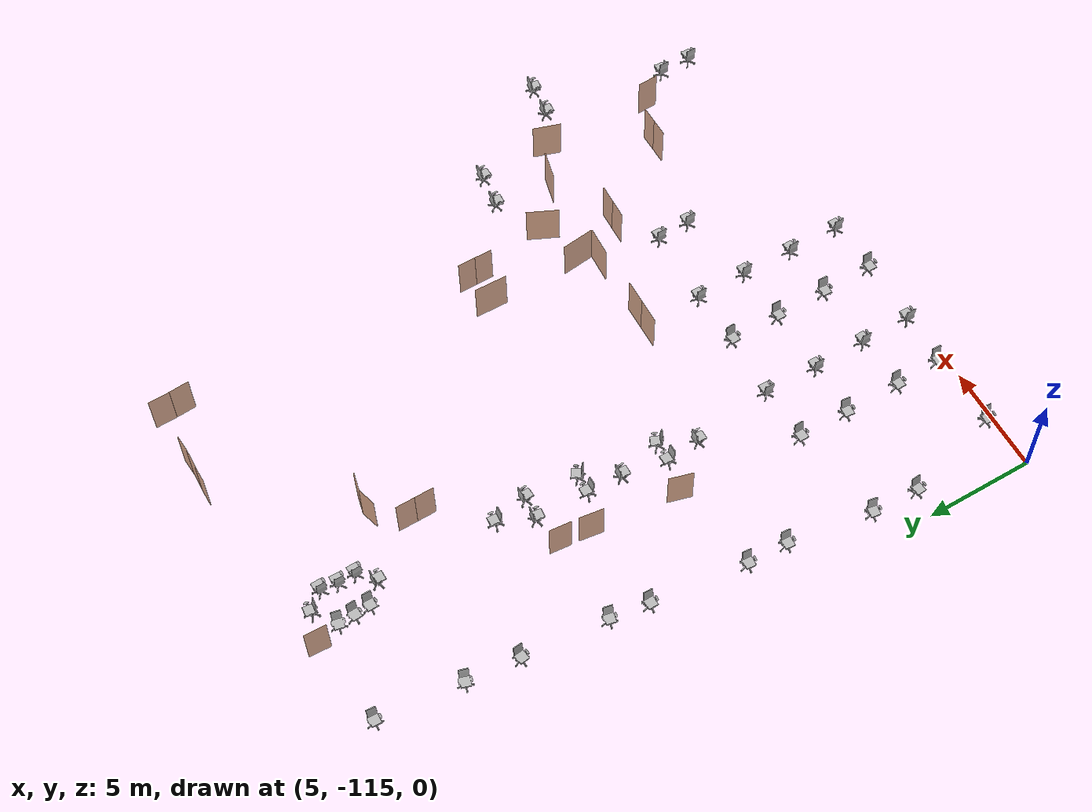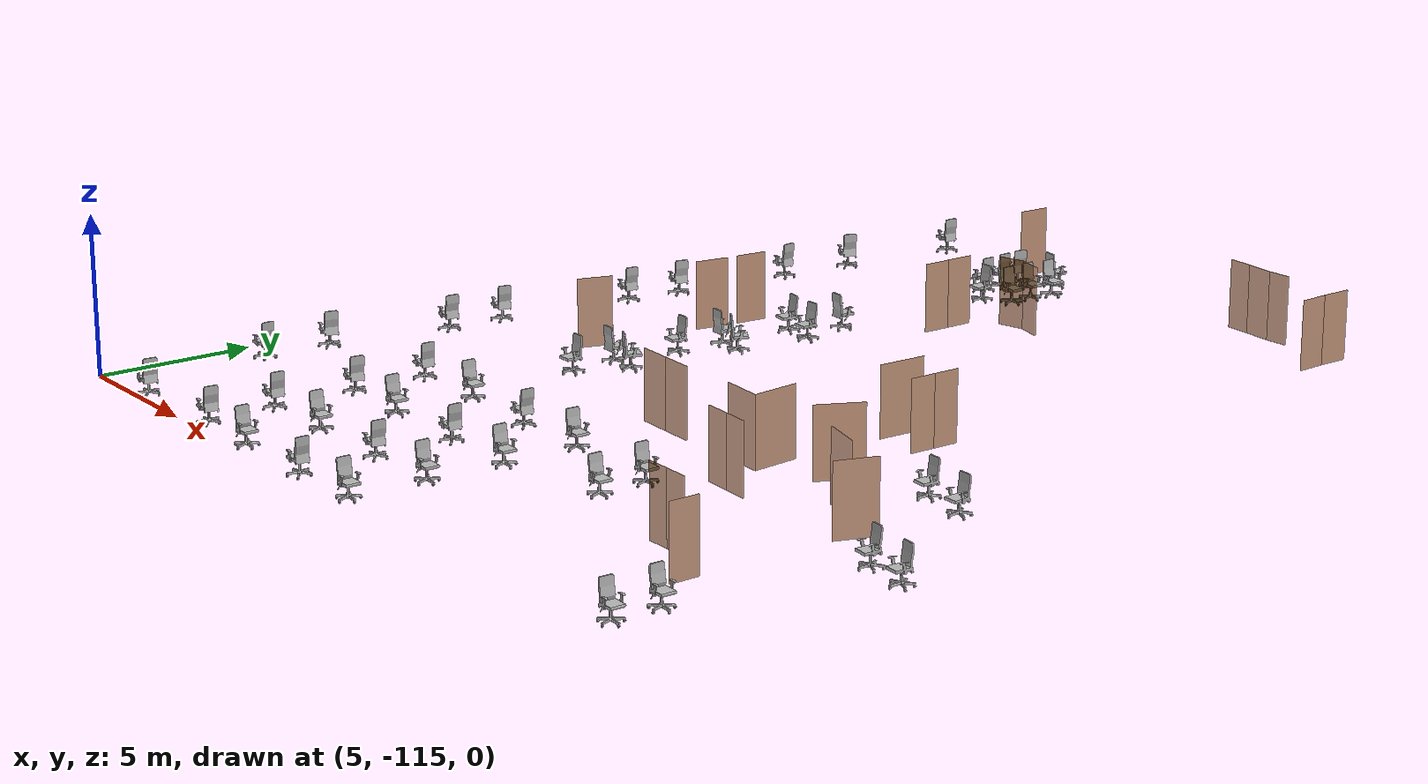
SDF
<sdf version="1.7">
 <world name="world">
  <include><uri>model://sun</uri></include>
  <include>
   <name>OpenRobotics/OfficeChairBlue</name>
   <uri>model://OfficeChairBlue</uri>
   <pose>28.21482018315684 -102.00691728255538 0.0 0 0 -0.0498</pose>
   <static>True</static>
  </include>
  <include>
   <name>OpenRobotics/OfficeChairBlue_2</name>
   <uri>model://OfficeChairBlue</uri>
   <pose>29.76414738809558 -102.22124087923856 0.0 0 0 0.0036</pose>
   <static>True</static>
  </include>
  <include>
   <name>OpenRobotics/OfficeChairBlue_3</name>
   <uri>model://OfficeChairBlue</uri>
   <pose>31.478287081211857 -106.56777730961561 0.0 0 0 -0.0988</pose>
   <static>True</static>
  </include>
  <include>
   <name>OpenRobotics/OfficeChairBlue_4</name>
   <uri>model://OfficeChairBlue</uri>
   <pose>32.94004361804536 -106.73483519953945 0.0 0 0 -0.0909</pose>
   <static>True</static>
  </include>
  <include>
   <name>OpenRobotics/OfficeChairBlue_5</name>
   <uri>model://OfficeChairBlue</uri>
   <pose>22.90410824292371 -107.34760533610144 0.0 0 0 1.5708</pose>
   <static>True</static>
  </include>
  <include>
   <name>OpenRobotics/OfficeChairBlue_6</name>
   <uri>model://OfficeChairBlue</uri>
   <pose>22.97248072609818 -108.90804727968431 0.0 0 0 1.5708</pose>
   <static>True</static>
  </include>
  <include>
   <name>OpenRobotics/OfficeChairBlue_7</name>
   <uri>model://OfficeChairBlue</uri>
   <pose>30.84272611692503 -112.35720890215734 0.0 0 0 1.5708</pose>
   <static>True</static>
  </include>
  <include>
   <name>OpenRobotics/OfficeChairBlue_8</name>
   <uri>model://OfficeChairBlue</uri>
   <pose>22.97248072609818 -108.90804727968431 0.0 0 0 1.5708</pose>
   <static>True</static>
  </include>
  <include>
   <name>OpenRobotics/OfficeChairBlue_9</name>
   <uri>model://OfficeChairBlue</uri>
   <pose>19.261168449746016 -114.53827988841422 0.0 0 0 1.5708</pose>
   <static>True</static>
  </include>
  <include>
   <name>OpenRobotics/OfficeChairBlue_10</name>
   <uri>model://OfficeChairBlue</uri>
   <pose>22.97248072609818 -108.90804727968431 0.0 0 0 1.5708</pose>
   <static>True</static>
  </include>
  <include>
   <name>OpenRobotics/OfficeChairBlue_11</name>
   <uri>model://OfficeChairBlue</uri>
   <pose>16.427359175843208 -112.17140190765201 0.0 0 0 -1.6285</pose>
   <static>True</static>
  </include>
  <include>
   <name>OpenRobotics/OfficeChairBlue_12</name>
   <uri>model://OfficeChairBlue</uri>
   <pose>19.282836576597692 -112.09550732862748 0.0 0 0 1.5708</pose>
   <static>True</static>
  </include>
  <include>
   <name>OpenRobotics/OfficeChairBlue_13</name>
   <uri>model://OfficeChairBlue</uri>
   <pose>19.347953227240048 -109.65262249875342 0.0 0 0 1.5708</pose>
   <static>True</static>
  </include>
  <include>
   <name>OpenRobotics/OfficeChairBlue_14</name>
   <uri>model://OfficeChairBlue</uri>
   <pose>16.427359175843208 -109.70684895092627 0.0 0 0 -1.5575</pose>
   <static>True</static>
  </include>
  <include>
   <name>OpenRobotics/OfficeChairBlue_15</name>
   <uri>model://OfficeChairBlue</uri>
   <pose>19.31539490191887 -107.22062786734885 0.0 0 0 1.5708</pose>
   <static>True</static>
  </include>
  <include>
   <name>OpenRobotics/OfficeChairBlue_16</name>
   <uri>model://OfficeChairBlue</uri>
   <pose>16.449139572782205 -107.31830284331238 0.0 0 0 -1.5289</pose>
   <static>True</static>
  </include>
  <include>
   <name>OpenRobotics/OfficeChairBlue_17</name>
   <uri>model://OfficeChairBlue</uri>
   <pose>13.702227346460743 -107.16628914508868 0.0 0 0 1.5708</pose>
   <static>True</static>
  </include>
  <include>
   <name>OpenRobotics/OfficeChairBlue_18</name>
   <uri>model://OfficeChairBlue</uri>
   <pose>13.626220497348895 -109.71773914939577 0.0 0 0 1.5708</pose>
   <static>True</static>
  </include>
  <include>
   <name>OpenRobotics/OfficeChairBlue_19</name>
   <uri>model://OfficeChairBlue</uri>
   <pose>10.846749945706259 -107.23140579573104 0.0 0 0 -1.5505</pose>
   <static>True</static>
  </include>
  <include>
   <name>OpenRobotics/OfficeChairBlue_20</name>
   <uri>model://OfficeChairBlue</uri>
   <pose>10.814191620385083 -109.59828377649325 0.0 0 0 -1.6687</pose>
   <static>True</static>
  </include>
  <include>
   <name>OpenRobotics/OfficeChairBlue_21</name>
   <uri>model://OfficeChairBlue</uri>
   <pose>10.814191620385083 -112.29085728055453 0.0 0 0 -1.5637</pose>
   <static>True</static>
  </include>
  <include>
   <name>OpenRobotics/OfficeChairBlue_22</name>
   <uri>model://OfficeChairBlue</uri>
   <pose>10.911978866435927 -114.48405343624137 0.0 0 0 -1.6045</pose>
   <static>True</static>
  </include>
  <include>
   <name>OpenRobotics/OfficeChairBlue_23</name>
   <uri>model://OfficeChairBlue</uri>
   <pose>7.423185903140904 -114.65010089537937 0.0 0 0 -1.6313</pose>
   <static>True</static>
  </include>
  <include>
   <name>OpenRobotics/OfficeChairBlue_24</name>
   <uri>model://OfficeChairBlue</uri>
   <pose>13.65877882267007 -112.23663082838168 0.0 0 0 1.5708</pose>
   <static>True</static>
  </include>
  <include>
   <name>OpenRobotics/OfficeChairBlue_25</name>
   <uri>model://OfficeChairBlue</uri>
   <pose>13.65877882267007 -114.61428673752607 0.0 0 0 1.5708</pose>
   <static>True</static>
  </include>
  <include>
   <name>OpenRobotics/OfficeChairBlue_26</name>
   <uri>model://OfficeChairBlue</uri>
   <pose>13.310517011820798 -99.75084987797247 0.0 0 0 -0.0237</pose>
   <static>True</static>
  </include>
  <include>
   <name>OpenRobotics/OfficeChairBlue_27</name>
   <uri>model://OfficeChairBlue</uri>
   <pose>14.166351887418479 -93.77336588917912 0.0 0 0 3.0887</pose>
   <static>True</static>
  </include>
  <include>
   <name>OpenRobotics/OfficeChairBlue_28</name>
   <uri>model://OfficeChairBlue</uri>
   <pose>13.083170085009135 -103.45497686873651 0.0 0 0 -0.0022</pose>
   <static>True</static>
  </include>
  <include>
   <name>OpenRobotics/OfficeChairBlue_29</name>
   <uri>model://OfficeChairBlue</uri>
   <pose>6.143419177844043 -110.09979425652668 0.0 0 0 -1.4799</pose>
   <static>True</static>
  </include>
  <include>
   <name>OpenRobotics/OfficeChairBlue_30</name>
   <uri>model://OfficeChairBlue</uri>
   <pose>6.233010707520935 -107.85214710849236 0.0 0 0 -1.7433</pose>
   <static>True</static>
  </include>
  <include>
   <name>OpenRobotics/OfficeChairBlue_31</name>
   <uri>model://OfficeChairBlue</uri>
   <pose>6.868683941895076 -103.92460264397266 0.0 0 0 -1.641</pose>
   <static>True</static>
  </include>
  <include>
   <name>OpenRobotics/OfficeChairBlue_32</name>
   <uri>model://OfficeChairBlue</uri>
   <pose>6.937954585768061 -102.01690932032635 0.0 0 0 -1.6725</pose>
   <static>True</static>
  </include>
  <include>
   <name>OpenRobotics/OfficeChairBlue_33</name>
   <uri>model://OfficeChairBlue</uri>
   <pose>7.4930178974504615 -97.54260953058552 0.0 0 0 -1.5981</pose>
   <static>True</static>
  </include>
  <include>
   <name>OpenRobotics/OfficeChairBlue_34</name>
   <uri>model://OfficeChairBlue</uri>
   <pose>7.753147689757931 -95.7042991208995 0.0 0 0 -1.7676</pose>
   <static>True</static>
  </include>
  <include>
   <name>OpenRobotics/OfficeChairBlue_35</name>
   <uri>model://OfficeChairBlue</uri>
   <pose>8.140254950817987 -91.74666627297954 0.0 0 0 -1.4522</pose>
   <static>True</static>
  </include>
  <include>
   <name>OpenRobotics/OfficeChairBlue_36</name>
   <uri>model://OfficeChairBlue</uri>
   <pose>8.384105580464865 -89.21654758526219 0.0 0 0 -1.8611</pose>
   <static>True</static>
  </include>
  <include>
   <name>OpenRobotics/OfficeChairBlue_37</name>
   <uri>model://OfficeChairBlue</uri>
   <pose>8.810844182346905 -85.28406323690066 0.0 0 0 -1.6239</pose>
   <static>True</static>
  </include>
  <include>
   <name>OpenRobotics/OfficeChairBlue_62</name>
   <uri>model://OfficeChairBlue</uri>
   <pose>15.320151574748582 -86.06119678129093 0.0 0 0 1.6053</pose>
   <static>True</static>
  </include>
  <include>
   <name>OpenRobotics/OfficeChairBlue_63</name>
   <uri>model://OfficeChairBlue</uri>
   <pose>15.222476598785052 -87.67833511896757 0.0 0 0 1.5708</pose>
   <static>True</static>
  </include>
  <include>
   <name>OpenRobotics/OfficeChairBlue_64</name>
   <uri>model://OfficeChairBlue</uri>
   <pose>13.279755007896652 -85.9635218053274 0.0 0 0 -1.7895</pose>
   <static>True</static>
  </include>
  <include>
   <name>OpenRobotics/OfficeChairBlue_65</name>
   <uri>model://OfficeChairBlue</uri>
   <pose>13.366539785390684 -87.50476556397952 0.0 0 0 -1.5708</pose>
   <static>True</static>
  </include>
  <include>
   <name>OpenRobotics/OfficeChairBlue_226</name>
   <uri>model://OfficeChairBlue</uri>
   <pose>30.85631079749007 -113.86409801409124 0.0 0 0 1.5708</pose>
   <static>True</static>
  </include>
  <include>
   <name>OpenRobotics/OfficeChairBlue_227</name>
   <uri>model://OfficeChairBlue</uri>
   <pose>12.922736130236855 -101.5962333031593 0.0 0 0 -3.1416</pose>
   <static>True</static>
  </include>
  <include>
   <name>OpenRobotics/OfficeChairBlue_228</name>
   <uri>model://OfficeChairBlue</uri>
   <pose>13.898924539435576 -101.62295358394012 0.0 0 0 2.715</pose>
   <static>True</static>
  </include>
  <include>
   <name>OpenRobotics/OfficeChairBlue_229</name>
   <uri>model://OfficeChairBlue</uri>
   <pose>13.37742998386018 -97.83855348074627 0.0 0 0 3.1166</pose>
   <static>True</static>
  </include>
  <include>
   <name>OpenRobotics/OfficeChairBlue_230</name>
   <uri>model://OfficeChairBlue</uri>
   <pose>14.300065561409932 -97.90546645278566 0.0 0 0 2.6135</pose>
   <static>True</static>
  </include>
  <include>
   <name>OpenRobotics/OfficeChairBlue_231</name>
   <uri>model://OfficeChairBlue</uri>
   <pose>13.417510405031422 -95.57866889319469 0.0 0 0 -0.1049</pose>
   <static>True</static>
  </include>
  <include>
   <name>OpenRobotics/OfficeChairBlue_232</name>
   <uri>model://OfficeChairBlue</uri>
   <pose>14.500692207440766 -95.64546959514676 0.0 0 0 0.0435</pose>
   <static>True</static>
  </include>
  <include>
   <name>OpenRobotics/OfficeChairBlue_233</name>
   <uri>model://OfficeChairBlue</uri>
   <pose>14.484525314867492 -85.1712317991497 0.0 0 0 3.0129</pose>
   <static>True</static>
  </include>
  <include>
   <name>OpenRobotics/OfficeChairBlue_234</name>
   <uri>model://OfficeChairBlue</uri>
   <pose>14.321621418174296 -88.42728887144195 0.0 0 0 0.0</pose>
   <static>True</static>
  </include>
  <include>
   <name>OpenRobotics/OfficeChairBlue_235</name>
   <uri>model://OfficeChairBlue</uri>
   <pose>13.301423134748331 -86.75581181150514 0.0 0 0 -1.5153</pose>
   <static>True</static>
  </include>
  <include>
   <name>OpenRobotics/OfficeChairBlue_236</name>
   <uri>model://OfficeChairBlue</uri>
   <pose>15.200808471933374 -86.85348678746867 0.0 0 0 1.5708</pose>
   <static>True</static>
  </include>
  <include>
   <name>OpenRobotics/OfficeChairBlue_237</name>
   <uri>model://OfficeChairBlue</uri>
   <pose>16.48169789810338 -114.62517693599557 0.0 0 0 -1.5452</pose>
   <static>True</static>
  </include>
  <model name="double_hinged">
   <pose>24.472184552443952 -105.86788558529763 0.0 0 0 3.099994751753793</pose>
   <link name="right">
    <pose>0.4184557978647652 0 1.11 0 0 0</pose>
    <visual name="right_visual">
     <geometry><box><size>0.8269115957295304 0.03 2.2</size></box></geometry>
     <material><ambient>0.5 0.25 0 0.6</ambient><diffuse>0.5 0.25 0 0.6</diffuse></material>
    </visual>
    <collision name="right_collision">
     <geometry><box><size>0.8269115957295304 0.03 2.2</size></box></geometry>
     <surface><contact><collide_bitmask>0x02</collide_bitmask></contact></surface>
    </collision>
    <inertial>
     <mass>50.0</mass>
     <inertia><ixx>20.17041666666667</ixx><iyy>23.015761613133165</iyy><izz>2.8528449464664933</izz></inertia>
    </inertial>
   </link>
   <joint name="right_joint" type="revolute">
    <parent>world</parent>
    <child>right</child>
    <axis><xyz>0 0 -1</xyz><limit><lower>0</lower><upper>1.57</upper></limit></axis>
    <pose>0.4184557978647652 0 0 0 0 0</pose>
   </joint>
   <link name="left">
    <pose>-0.4184557978647652 0 1.11 0 0 0</pose>
    <visual name="left_visual">
     <geometry><box><size>0.8269115957295304 0.03 2.2</size></box></geometry>
     <material><ambient>0.5 0.25 0 0.6</ambient><diffuse>0.5 0.25 0 0.6</diffuse></material>
    </visual>
    <collision name="left_collision">
     <geometry><box><size>0.8269115957295304 0.03 2.2</size></box></geometry>
     <surface><contact><collide_bitmask>0x02</collide_bitmask></contact></surface>
    </collision>
    <inertial>
     <mass>50.0</mass>
     <inertia><ixx>20.17041666666667</ixx><iyy>23.015761613133165</iyy><izz>2.8528449464664933</izz></inertia>
    </inertial>
   </link>
   <joint name="left_joint" type="revolute">
    <parent>world</parent>
    <child>left</child>
    <axis><xyz>0 0 -1</xyz><limit><lower>-1.57</lower><upper>0</upper></limit></axis>
    <pose>-0.4184557978647652 0 0 0 0 0</pose>
   </joint>
   <plugin name="door" filename="libdoor.so">
    <v_max_door>0.5</v_max_door>
    <a_max_door>0.3</a_max_door>
    <a_nom_door>0.15</a_nom_door>
    <dx_min_door>0.01</dx_min_door>
    <f_max_door>500.0</f_max_door>
    <door name="double_hinged" type="DoubleSwingDoor" left_joint_name="left_joint" right_joint_name="right_joint"/>
   </plugin>
  </model>
  <model name="door_0">
   <pose>22.94839879236924 -104.24552668856089 0.0 0 0 3.084555944791062</pose>
   <link name="right">
    <pose>0 0 1.11 0 0 0</pose>
    <visual name="right_visual">
     <geometry><box><size>1.3705849030750386 0.03 2.2</size></box></geometry>
     <material><ambient>0.5 0.25 0 0.6</ambient><diffuse>0.5 0.25 0 0.6</diffuse></material>
    </visual>
    <collision name="right_collision">
     <geometry><box><size>1.3705849030750386 0.03 2.2</size></box></geometry>
     <surface><contact><collide_bitmask>0x02</collide_bitmask></contact></surface>
    </collision>
    <inertial>
     <mass>50.0</mass>
     <inertia><ixx>20.17041666666667</ixx><iyy>27.993762402238392</iyy><izz>7.83084573557172</izz></inertia>
    </inertial>
   </link>
   <joint name="right_joint" type="revolute">
    <parent>world</parent>
    <child>right</child>
    <axis><xyz>0 0 -1</xyz><limit><lower>0</lower><upper>1.57</upper></limit></axis>
    <pose>0.6902924515375193 0 0 0 0 0</pose>
   </joint>
   <plugin name="door" filename="libdoor.so">
    <v_max_door>0.5</v_max_door>
    <a_max_door>0.3</a_max_door>
    <a_nom_door>0.15</a_nom_door>
    <dx_min_door>0.01</dx_min_door>
    <f_max_door>500.0</f_max_door>
    <door name="door_0" type="SwingDoor" left_joint_name="empty_joint" right_joint_name="right_joint"/>
   </plugin>
  </model>
  <model name="double_hinged_0">
   <pose>19.3055151342352 -104.2553503212009 0.0 0 0 3.114822426434996</pose>
   <link name="right">
    <pose>0.5515560219482146 0 1.11 0 0 0</pose>
    <visual name="right_visual">
     <geometry><box><size>1.0931120438964292 0.03 2.2</size></box></geometry>
     <material><ambient>0.5 0.25 0 0.6</ambient><diffuse>0.5 0.25 0 0.6</diffuse></material>
    </visual>
    <collision name="right_collision">
     <geometry><box><size>1.0931120438964292 0.03 2.2</size></box></geometry>
     <surface><contact><collide_bitmask>0x02</collide_bitmask></contact></surface>
    </collision>
    <inertial>
     <mass>50.0</mass>
     <inertia><ixx>20.17041666666667</ixx><iyy>25.145391418797626</iyy><izz>4.982474752130954</izz></inertia>
    </inertial>
   </link>
   <joint name="right_joint" type="revolute">
    <parent>world</parent>
    <child>right</child>
    <axis><xyz>0 0 -1</xyz><limit><lower>0</lower><upper>1.57</upper></limit></axis>
    <pose>0.5515560219482146 0 0 0 0 0</pose>
   </joint>
   <link name="left">
    <pose>-0.5515560219482146 0 1.11 0 0 0</pose>
    <visual name="left_visual">
     <geometry><box><size>1.0931120438964292 0.03 2.2</size></box></geometry>
     <material><ambient>0.5 0.25 0 0.6</ambient><diffuse>0.5 0.25 0 0.6</diffuse></material>
    </visual>
    <collision name="left_collision">
     <geometry><box><size>1.0931120438964292 0.03 2.2</size></box></geometry>
     <surface><contact><collide_bitmask>0x02</collide_bitmask></contact></surface>
    </collision>
    <inertial>
     <mass>50.0</mass>
     <inertia><ixx>20.17041666666667</ixx><iyy>25.145391418797626</iyy><izz>4.982474752130954</izz></inertia>
    </inertial>
   </link>
   <joint name="left_joint" type="revolute">
    <parent>world</parent>
    <child>left</child>
    <axis><xyz>0 0 -1</xyz><limit><lower>-1.57</lower><upper>0</upper></limit></axis>
    <pose>-0.5515560219482146 0 0 0 0 0</pose>
   </joint>
   <plugin name="door" filename="libdoor.so">
    <v_max_door>0.5</v_max_door>
    <a_max_door>0.3</a_max_door>
    <a_nom_door>0.15</a_nom_door>
    <dx_min_door>0.01</dx_min_door>
    <f_max_door>500.0</f_max_door>
    <door name="double_hinged_0" type="DoubleSwingDoor" left_joint_name="left_joint" right_joint_name="right_joint"/>
   </plugin>
  </model>
  <model name="door_1">
   <pose>29.542021020344038 -105.38950274325097 0.0 0 0 -1.8884595261010841</pose>
   <link name="right">
    <pose>0 0 1.11 0 0 0</pose>
    <visual name="right_visual">
     <geometry><box><size>1.3015952890441873 0.03 2.2</size></box></geometry>
     <material><ambient>0.5 0.25 0 0.6</ambient><diffuse>0.5 0.25 0 0.6</diffuse></material>
    </visual>
    <collision name="right_collision">
     <geometry><box><size>1.3015952890441873 0.03 2.2</size></box></geometry>
     <surface><contact><collide_bitmask>0x02</collide_bitmask></contact></surface>
    </collision>
    <inertial>
     <mass>50.0</mass>
     <inertia><ixx>20.17041666666667</ixx><iyy>27.225626235258428</iyy><izz>7.062709568591756</izz></inertia>
    </inertial>
   </link>
   <joint name="right_joint" type="revolute">
    <parent>world</parent>
    <child>right</child>
    <axis><xyz>0 0 -1</xyz><limit><lower>0</lower><upper>1.57</upper></limit></axis>
    <pose>0.6557976445220937 0 0 0 0 0</pose>
   </joint>
   <plugin name="door" filename="libdoor.so">
    <v_max_door>0.5</v_max_door>
    <a_max_door>0.3</a_max_door>
    <a_nom_door>0.15</a_nom_door>
    <dx_min_door>0.01</dx_min_door>
    <f_max_door>500.0</f_max_door>
    <door name="door_1" type="SwingDoor" left_joint_name="empty_joint" right_joint_name="right_joint"/>
   </plugin>
  </model>
  <model name="door_2">
   <pose>27.67356609221411 -104.42678674452998 0.0 0 0 -0.2439608724918586</pose>
   <link name="right">
    <pose>0 0 1.11 0 0 0</pose>
    <visual name="right_visual">
     <geometry><box><size>1.3276769035033793 0.03 2.2</size></box></geometry>
     <material><ambient>0.5 0.25 0 0.6</ambient><diffuse>0.5 0.25 0 0.6</diffuse></material>
    </visual>
    <collision name="right_collision">
     <geometry><box><size>1.3276769035033793 0.03 2.2</size></box></geometry>
     <surface><contact><collide_bitmask>0x02</collide_bitmask></contact></surface>
    </collision>
    <inertial>
     <mass>50.0</mass>
     <inertia><ixx>20.17041666666667</ixx><iyy>27.51135816706801</iyy><izz>7.34844150040134</izz></inertia>
    </inertial>
   </link>
   <joint name="right_joint" type="revolute">
    <parent>world</parent>
    <child>right</child>
    <axis><xyz>0 0 -1</xyz><limit><lower>0</lower><upper>1.57</upper></limit></axis>
    <pose>0.6688384517516897 0 0 0 0 0</pose>
   </joint>
   <plugin name="door" filename="libdoor.so">
    <v_max_door>0.5</v_max_door>
    <a_max_door>0.3</a_max_door>
    <a_nom_door>0.15</a_nom_door>
    <dx_min_door>0.01</dx_min_door>
    <f_max_door>500.0</f_max_door>
    <door name="door_2" type="SwingDoor" left_joint_name="empty_joint" right_joint_name="right_joint"/>
   </plugin>
  </model>
  <model name="double_hinged_1">
   <pose>27.271021694148324 -109.78162082907767 0.0 0 0 3.141592653589793</pose>
   <link name="right">
    <pose>0.38904392006622945 0 1.11 0 0 0</pose>
    <visual name="right_visual">
     <geometry><box><size>0.7680878401324589 0.03 2.2</size></box></geometry>
     <material><ambient>0.5 0.25 0 0.6</ambient><diffuse>0.5 0.25 0 0.6</diffuse></material>
    </visual>
    <collision name="right_collision">
     <geometry><box><size>0.7680878401324589 0.03 2.2</size></box></geometry>
     <surface><contact><collide_bitmask>0x02</collide_bitmask></contact></surface>
    </collision>
    <inertial>
     <mass>50.0</mass>
     <inertia><ixx>20.17041666666667</ixx><iyy>22.624828875663944</iyy><izz>2.461912208997274</izz></inertia>
    </inertial>
   </link>
   <joint name="right_joint" type="revolute">
    <parent>world</parent>
    <child>right</child>
    <axis><xyz>0 0 -1</xyz><limit><lower>0</lower><upper>1.57</upper></limit></axis>
    <pose>0.38904392006622945 0 0 0 0 0</pose>
   </joint>
   <link name="left">
    <pose>-0.38904392006622945 0 1.11 0 0 0</pose>
    <visual name="left_visual">
     <geometry><box><size>0.7680878401324589 0.03 2.2</size></box></geometry>
     <material><ambient>0.5 0.25 0 0.6</ambient><diffuse>0.5 0.25 0 0.6</diffuse></material>
    </visual>
    <collision name="left_collision">
     <geometry><box><size>0.7680878401324589 0.03 2.2</size></box></geometry>
     <surface><contact><collide_bitmask>0x02</collide_bitmask></contact></surface>
    </collision>
    <inertial>
     <mass>50.0</mass>
     <inertia><ixx>20.17041666666667</ixx><iyy>22.624828875663944</iyy><izz>2.461912208997274</izz></inertia>
    </inertial>
   </link>
   <joint name="left_joint" type="revolute">
    <parent>world</parent>
    <child>left</child>
    <axis><xyz>0 0 -1</xyz><limit><lower>-1.57</lower><upper>0</upper></limit></axis>
    <pose>-0.38904392006622945 0 0 0 0 0</pose>
   </joint>
   <plugin name="door" filename="libdoor.so">
    <v_max_door>0.5</v_max_door>
    <a_max_door>0.3</a_max_door>
    <a_nom_door>0.15</a_nom_door>
    <dx_min_door>0.01</dx_min_door>
    <f_max_door>500.0</f_max_door>
    <door name="double_hinged_1" type="DoubleSwingDoor" left_joint_name="left_joint" right_joint_name="right_joint"/>
   </plugin>
  </model>
  <model name="door_3">
   <pose>23.55258026725169 -103.52121622025201 0.0 0 0 -1.4599616146991046</pose>
   <link name="right">
    <pose>0 0 1.11 0 0 0</pose>
    <visual name="right_visual">
     <geometry><box><size>1.5267515936134566 0.03 2.2</size></box></geometry>
     <material><ambient>0.5 0.25 0 0.6</ambient><diffuse>0.5 0.25 0 0.6</diffuse></material>
    </visual>
    <collision name="right_collision">
     <geometry><box><size>1.5267515936134566 0.03 2.2</size></box></geometry>
     <surface><contact><collide_bitmask>0x02</collide_bitmask></contact></surface>
    </collision>
    <inertial>
     <mass>50.0</mass>
     <inertia><ixx>20.17041666666667</ixx><iyy>29.879043452505126</iyy><izz>9.716126785838457</izz></inertia>
    </inertial>
   </link>
   <joint name="right_joint" type="revolute">
    <parent>world</parent>
    <child>right</child>
    <axis><xyz>0 0 -1</xyz><limit><lower>0</lower><upper>1.57</upper></limit></axis>
    <pose>0.7683757968067283 0 0 0 0 0</pose>
   </joint>
   <plugin name="door" filename="libdoor.so">
    <v_max_door>0.5</v_max_door>
    <a_max_door>0.3</a_max_door>
    <a_nom_door>0.15</a_nom_door>
    <dx_min_door>0.01</dx_min_door>
    <f_max_door>500.0</f_max_door>
    <door name="door_3" type="SwingDoor" left_joint_name="empty_joint" right_joint_name="right_joint"/>
   </plugin>
  </model>
  <model name="door_4">
   <pose>25.617507848181816 -102.8860482012708 0.0 0 0 1.1255060173748208</pose>
   <link name="right">
    <pose>0 0 1.11 0 0 0</pose>
    <visual name="right_visual">
     <geometry><box><size>1.491644050380984 0.03 2.2</size></box></geometry>
     <material><ambient>0.5 0.25 0 0.6</ambient><diffuse>0.5 0.25 0 0.6</diffuse></material>
    </visual>
    <collision name="right_collision">
     <geometry><box><size>1.491644050380984 0.03 2.2</size></box></geometry>
     <surface><contact><collide_bitmask>0x02</collide_bitmask></contact></surface>
    </collision>
    <inertial>
     <mass>50.0</mass>
     <inertia><ixx>20.17041666666667</ixx><iyy>29.437508220987453</iyy><izz>9.274591554320782</izz></inertia>
    </inertial>
   </link>
   <joint name="right_joint" type="revolute">
    <parent>world</parent>
    <child>right</child>
    <axis><xyz>0 0 -1</xyz><limit><lower>0</lower><upper>1.57</upper></limit></axis>
    <pose>0.750822025190492 0 0 0 0 0</pose>
   </joint>
   <plugin name="door" filename="libdoor.so">
    <v_max_door>0.5</v_max_door>
    <a_max_door>0.3</a_max_door>
    <a_nom_door>0.15</a_nom_door>
    <dx_min_door>0.01</dx_min_door>
    <f_max_door>500.0</f_max_door>
    <door name="door_4" type="SwingDoor" left_joint_name="empty_joint" right_joint_name="right_joint"/>
   </plugin>
  </model>
  <model name="double_hinged_2">
   <pose>25.016806746006115 -99.06656369579119 0.0 0 0 1.5707963267948966</pose>
   <link name="right">
    <pose>0.4158484034125429 0 1.11 0 0 0</pose>
    <visual name="right_visual">
     <geometry><box><size>0.8216968068250858 0.03 2.2</size></box></geometry>
     <material><ambient>0.5 0.25 0 0.6</ambient><diffuse>0.5 0.25 0 0.6</diffuse></material>
    </visual>
    <collision name="right_collision">
     <geometry><box><size>0.8216968068250858 0.03 2.2</size></box></geometry>
     <surface><contact><collide_bitmask>0x02</collide_bitmask></contact></surface>
    </collision>
    <inertial>
     <mass>50.0</mass>
     <inertia><ixx>20.17041666666667</ixx><iyy>22.97994017644393</iyy><izz>2.8170235097772602</izz></inertia>
    </inertial>
   </link>
   <joint name="right_joint" type="revolute">
    <parent>world</parent>
    <child>right</child>
    <axis><xyz>0 0 -1</xyz><limit><lower>0</lower><upper>1.57</upper></limit></axis>
    <pose>0.4158484034125429 0 0 0 0 0</pose>
   </joint>
   <link name="left">
    <pose>-0.4158484034125429 0 1.11 0 0 0</pose>
    <visual name="left_visual">
     <geometry><box><size>0.8216968068250858 0.03 2.2</size></box></geometry>
     <material><ambient>0.5 0.25 0 0.6</ambient><diffuse>0.5 0.25 0 0.6</diffuse></material>
    </visual>
    <collision name="left_collision">
     <geometry><box><size>0.8216968068250858 0.03 2.2</size></box></geometry>
     <surface><contact><collide_bitmask>0x02</collide_bitmask></contact></surface>
    </collision>
    <inertial>
     <mass>50.0</mass>
     <inertia><ixx>20.17041666666667</ixx><iyy>22.97994017644393</iyy><izz>2.8170235097772602</izz></inertia>
    </inertial>
   </link>
   <joint name="left_joint" type="revolute">
    <parent>world</parent>
    <child>left</child>
    <axis><xyz>0 0 -1</xyz><limit><lower>-1.57</lower><upper>0</upper></limit></axis>
    <pose>-0.4158484034125429 0 0 0 0 0</pose>
   </joint>
   <plugin name="door" filename="libdoor.so">
    <v_max_door>0.5</v_max_door>
    <a_max_door>0.3</a_max_door>
    <a_nom_door>0.15</a_nom_door>
    <dx_min_door>0.01</dx_min_door>
    <f_max_door>500.0</f_max_door>
    <door name="double_hinged_2" type="DoubleSwingDoor" left_joint_name="left_joint" right_joint_name="right_joint"/>
   </plugin>
  </model>
  <model name="door_5">
   <pose>23.514240032433825 -99.01452651032098 0.0 0 0 1.5450254306880997</pose>
   <link name="right">
    <pose>0 0 1.11 0 0 0</pose>
    <visual name="right_visual">
     <geometry><box><size>1.519289581347482 0.03 2.2</size></box></geometry>
     <material><ambient>0.5 0.25 0 0.6</ambient><diffuse>0.5 0.25 0 0.6</diffuse></material>
    </visual>
    <collision name="right_collision">
     <geometry><box><size>1.519289581347482 0.03 2.2</size></box></geometry>
     <surface><contact><collide_bitmask>0x02</collide_bitmask></contact></surface>
    </collision>
    <inertial>
     <mass>50.0</mass>
     <inertia><ixx>20.17041666666667</ixx><iyy>29.784336799962535</iyy><izz>9.621420133295866</izz></inertia>
    </inertial>
   </link>
   <joint name="right_joint" type="revolute">
    <parent>world</parent>
    <child>right</child>
    <axis><xyz>0 0 -1</xyz><limit><lower>0</lower><upper>1.57</upper></limit></axis>
    <pose>0.764644790673741 0 0 0 0 0</pose>
   </joint>
   <plugin name="door" filename="libdoor.so">
    <v_max_door>0.5</v_max_door>
    <a_max_door>0.3</a_max_door>
    <a_nom_door>0.15</a_nom_door>
    <dx_min_door>0.01</dx_min_door>
    <f_max_door>500.0</f_max_door>
    <door name="door_5" type="SwingDoor" left_joint_name="empty_joint" right_joint_name="right_joint"/>
   </plugin>
  </model>
  <model name="door_6">
   <pose>11.179069404156888 -101.22271072266427 0.0 0 0 -1.848470697025238</pose>
   <link name="right">
    <pose>0 0 1.11 0 0 0</pose>
    <visual name="right_visual">
     <geometry><box><size>1.1244970039752662 0.03 2.2</size></box></geometry>
     <material><ambient>0.5 0.25 0 0.6</ambient><diffuse>0.5 0.25 0 0.6</diffuse></material>
    </visual>
    <collision name="right_collision">
     <geometry><box><size>1.1244970039752662 0.03 2.2</size></box></geometry>
     <surface><contact><collide_bitmask>0x02</collide_bitmask></contact></surface>
    </collision>
    <inertial>
     <mass>50.0</mass>
     <inertia><ixx>20.17041666666667</ixx><iyy>25.435389633122295</iyy><izz>5.2724729664556245</izz></inertia>
    </inertial>
   </link>
   <joint name="right_joint" type="revolute">
    <parent>world</parent>
    <child>right</child>
    <axis><xyz>0 0 -1</xyz><limit><lower>0</lower><upper>1.57</upper></limit></axis>
    <pose>0.5672485019876331 0 0 0 0 0</pose>
   </joint>
   <plugin name="door" filename="libdoor.so">
    <v_max_door>0.5</v_max_door>
    <a_max_door>0.3</a_max_door>
    <a_nom_door>0.15</a_nom_door>
    <dx_min_door>0.01</dx_min_door>
    <f_max_door>500.0</f_max_door>
    <door name="door_6" type="SwingDoor" left_joint_name="empty_joint" right_joint_name="right_joint"/>
   </plugin>
  </model>
  <model name="door_7">
   <pose>11.614228262587506 -97.09903041560631 0.0 0 0 -1.710239848433522</pose>
   <link name="right">
    <pose>0 0 1.11 0 0 0</pose>
    <visual name="right_visual">
     <geometry><box><size>1.1159959922448497 0.03 2.2</size></box></geometry>
     <material><ambient>0.5 0.25 0 0.6</ambient><diffuse>0.5 0.25 0 0.6</diffuse></material>
    </visual>
    <collision name="right_collision">
     <geometry><box><size>1.1159959922448497 0.03 2.2</size></box></geometry>
     <surface><contact><collide_bitmask>0x02</collide_bitmask></contact></surface>
    </collision>
    <inertial>
     <mass>50.0</mass>
     <inertia><ixx>20.17041666666667</ixx><iyy>25.3560293946107</iyy><izz>5.193112727944027</izz></inertia>
    </inertial>
   </link>
   <joint name="right_joint" type="revolute">
    <parent>world</parent>
    <child>right</child>
    <axis><xyz>0 0 -1</xyz><limit><lower>0</lower><upper>1.57</upper></limit></axis>
    <pose>0.5629979961224248 0 0 0 0 0</pose>
   </joint>
   <plugin name="door" filename="libdoor.so">
    <v_max_door>0.5</v_max_door>
    <a_max_door>0.3</a_max_door>
    <a_nom_door>0.15</a_nom_door>
    <dx_min_door>0.01</dx_min_door>
    <f_max_door>500.0</f_max_door>
    <door name="door_7" type="SwingDoor" left_joint_name="empty_joint" right_joint_name="right_joint"/>
   </plugin>
  </model>
  <model name="double_hinged_3">
   <pose>16.007076103981746 -91.12272526272974 0.0 0 0 1.5792257243922367</pose>
   <link name="right">
    <pose>0.4495173321599181 0 1.11 0 0 0</pose>
    <visual name="right_visual">
     <geometry><box><size>0.8890346643198362 0.03 2.2</size></box></geometry>
     <material><ambient>0.5 0.25 0 0.6</ambient><diffuse>0.5 0.25 0 0.6</diffuse></material>
    </visual>
    <collision name="right_collision">
     <geometry><box><size>0.8890346643198362 0.03 2.2</size></box></geometry>
     <surface><contact><collide_bitmask>0x02</collide_bitmask></contact></surface>
    </collision>
    <inertial>
     <mass>50.0</mass>
     <inertia><ixx>20.17041666666667</ixx><iyy>23.459927643176187</iyy><izz>3.2970109765095166</izz></inertia>
    </inertial>
   </link>
   <joint name="right_joint" type="revolute">
    <parent>world</parent>
    <child>right</child>
    <axis><xyz>0 0 -1</xyz><limit><lower>0</lower><upper>1.57</upper></limit></axis>
    <pose>0.4495173321599181 0 0 0 0 0</pose>
   </joint>
   <link name="left">
    <pose>-0.4495173321599181 0 1.11 0 0 0</pose>
    <visual name="left_visual">
     <geometry><box><size>0.8890346643198362 0.03 2.2</size></box></geometry>
     <material><ambient>0.5 0.25 0 0.6</ambient><diffuse>0.5 0.25 0 0.6</diffuse></material>
    </visual>
    <collision name="left_collision">
     <geometry><box><size>0.8890346643198362 0.03 2.2</size></box></geometry>
     <surface><contact><collide_bitmask>0x02</collide_bitmask></contact></surface>
    </collision>
    <inertial>
     <mass>50.0</mass>
     <inertia><ixx>20.17041666666667</ixx><iyy>23.459927643176187</iyy><izz>3.2970109765095166</izz></inertia>
    </inertial>
   </link>
   <joint name="left_joint" type="revolute">
    <parent>world</parent>
    <child>left</child>
    <axis><xyz>0 0 -1</xyz><limit><lower>-1.57</lower><upper>0</upper></limit></axis>
    <pose>-0.4495173321599181 0 0 0 0 0</pose>
   </joint>
   <plugin name="door" filename="libdoor.so">
    <v_max_door>0.5</v_max_door>
    <a_max_door>0.3</a_max_door>
    <a_nom_door>0.15</a_nom_door>
    <dx_min_door>0.01</dx_min_door>
    <f_max_door>500.0</f_max_door>
    <door name="double_hinged_3" type="DoubleSwingDoor" left_joint_name="left_joint" right_joint_name="right_joint"/>
   </plugin>
  </model>
  <model name="door_9">
   <pose>17.92004612173183 -89.39303616252043 0.0 0 0 2.912726429393832</pose>
   <link name="right">
    <pose>0 0 1.11 0 0 0</pose>
    <visual name="right_visual">
     <geometry><box><size>0.8569907658787239 0.03 2.2</size></box></geometry>
     <material><ambient>0.5 0.25 0 0.6</ambient><diffuse>0.5 0.25 0 0.6</diffuse></material>
    </visual>
    <collision name="right_collision">
     <geometry><box><size>0.8569907658787239 0.03 2.2</size></box></geometry>
     <surface><contact><collide_bitmask>0x02</collide_bitmask></contact></surface>
    </collision>
    <inertial>
     <mass>50.0</mass>
     <inertia><ixx>20.17041666666667</ixx><iyy>23.22680488667251</iyy><izz>3.063888220005841</izz></inertia>
    </inertial>
   </link>
   <joint name="right_joint" type="revolute">
    <parent>world</parent>
    <child>right</child>
    <axis><xyz>0 0 -1</xyz><limit><lower>0</lower><upper>1.57</upper></limit></axis>
    <pose>0.43349538293936196 0 0 0 0 0</pose>
   </joint>
   <plugin name="door" filename="libdoor.so">
    <v_max_door>0.5</v_max_door>
    <a_max_door>0.3</a_max_door>
    <a_nom_door>0.15</a_nom_door>
    <dx_min_door>0.01</dx_min_door>
    <f_max_door>500.0</f_max_door>
    <door name="door_9" type="SwingDoor" left_joint_name="empty_joint" right_joint_name="right_joint"/>
   </plugin>
  </model>
  <model name="door_10">
   <pose>17.07807660191748 -89.4145920192848 0.0 0 0 -2.8633636434948104</pose>
   <link name="right">
    <pose>0 0 1.11 0 0 0</pose>
    <visual name="right_visual">
     <geometry><box><size>0.8631334988211897 0.03 2.2</size></box></geometry>
     <material><ambient>0.5 0.25 0 0.6</ambient><diffuse>0.5 0.25 0 0.6</diffuse></material>
    </visual>
    <collision name="right_collision">
     <geometry><box><size>0.8631334988211897 0.03 2.2</size></box></geometry>
     <surface><contact><collide_bitmask>0x02</collide_bitmask></contact></surface>
    </collision>
    <inertial>
     <mass>50.0</mass>
     <inertia><ixx>20.17041666666667</ixx><iyy>23.27083098661379</iyy><izz>3.10791431994712</izz></inertia>
    </inertial>
   </link>
   <joint name="right_joint" type="revolute">
    <parent>world</parent>
    <child>right</child>
    <axis><xyz>0 0 -1</xyz><limit><lower>0</lower><upper>1.57</upper></limit></axis>
    <pose>0.43656674941059487 0 0 0 0 0</pose>
   </joint>
   <plugin name="door" filename="libdoor.so">
    <v_max_door>0.5</v_max_door>
    <a_max_door>0.3</a_max_door>
    <a_nom_door>0.15</a_nom_door>
    <dx_min_door>0.01</dx_min_door>
    <f_max_door>500.0</f_max_door>
    <door name="door_10" type="SwingDoor" left_joint_name="empty_joint" right_joint_name="right_joint"/>
   </plugin>
  </model>
  <model name="door_11">
   <pose>21.573314762942452 -83.89382274568644 0.0 0 0 3.1329421089454836</pose>
   <link name="right">
    <pose>0 0 1.11 0 0 0</pose>
    <visual name="right_visual">
     <geometry><box><size>0.7946698230895428 0.03 2.2</size></box></geometry>
     <material><ambient>0.5 0.25 0 0.6</ambient><diffuse>0.5 0.25 0 0.6</diffuse></material>
    </visual>
    <collision name="right_collision">
     <geometry><box><size>0.7946698230895428 0.03 2.2</size></box></geometry>
     <surface><contact><collide_bitmask>0x02</collide_bitmask></contact></surface>
    </collision>
    <inertial>
     <mass>50.0</mass>
     <inertia><ixx>20.17041666666667</ixx><iyy>22.797917198871524</iyy><izz>2.6350005322048555</izz></inertia>
    </inertial>
   </link>
   <joint name="right_joint" type="revolute">
    <parent>world</parent>
    <child>right</child>
    <axis><xyz>0 0 -1</xyz><limit><lower>0</lower><upper>1.57</upper></limit></axis>
    <pose>0.4023349115447714 0 0 0 0 0</pose>
   </joint>
   <plugin name="door" filename="libdoor.so">
    <v_max_door>0.5</v_max_door>
    <a_max_door>0.3</a_max_door>
    <a_nom_door>0.15</a_nom_door>
    <dx_min_door>0.01</dx_min_door>
    <f_max_door>500.0</f_max_door>
    <door name="door_11" type="SwingDoor" left_joint_name="empty_joint" right_joint_name="right_joint"/>
   </plugin>
  </model>
  <model name="door_12">
   <pose>22.435436763429742 -83.91728719393512 0.0 0 0 3.0981576523222047</pose>
   <link name="right">
    <pose>0 0 1.11 0 0 0</pose>
    <visual name="right_visual">
     <geometry><box><size>0.910472430029842 0.03 2.2</size></box></geometry>
     <material><ambient>0.5 0.25 0 0.6</ambient><diffuse>0.5 0.25 0 0.6</diffuse></material>
    </visual>
    <collision name="right_collision">
     <geometry><box><size>0.910472430029842 0.03 2.2</size></box></geometry>
     <surface><contact><collide_bitmask>0x02</collide_bitmask></contact></surface>
    </collision>
    <inertial>
     <mass>50.0</mass>
     <inertia><ixx>20.17041666666667</ixx><iyy>23.620666857685197</iyy><izz>3.4577501910185235</izz></inertia>
    </inertial>
   </link>
   <joint name="right_joint" type="revolute">
    <parent>world</parent>
    <child>right</child>
    <axis><xyz>0 0 -1</xyz><limit><lower>0</lower><upper>1.57</upper></limit></axis>
    <pose>0.460236215014921 0 0 0 0 0</pose>
   </joint>
   <plugin name="door" filename="libdoor.so">
    <v_max_door>0.5</v_max_door>
    <a_max_door>0.3</a_max_door>
    <a_nom_door>0.15</a_nom_door>
    <dx_min_door>0.01</dx_min_door>
    <f_max_door>500.0</f_max_door>
    <door name="door_12" type="SwingDoor" left_joint_name="empty_joint" right_joint_name="right_joint"/>
   </plugin>
  </model>
  <model name="door_13">
   <pose>23.280044630295983 -83.9127402553989 0.0 0 0 -3.0779297129935363</pose>
   <link name="right">
    <pose>0 0 1.11 0 0 0</pose>
    <visual name="right_visual">
     <geometry><box><size>0.7611736927119532 0.03 2.2</size></box></geometry>
     <material><ambient>0.5 0.25 0 0.6</ambient><diffuse>0.5 0.25 0 0.6</diffuse></material>
    </visual>
    <collision name="right_collision">
     <geometry><box><size>0.7611736927119532 0.03 2.2</size></box></geometry>
     <surface><contact><collide_bitmask>0x02</collide_bitmask></contact></surface>
    </collision>
    <inertial>
     <mass>50.0</mass>
     <inertia><ixx>20.17041666666667</ixx><iyy>22.5807724603198</iyy><izz>2.4178557936531293</izz></inertia>
    </inertial>
   </link>
   <joint name="right_joint" type="revolute">
    <parent>world</parent>
    <child>right</child>
    <axis><xyz>0 0 -1</xyz><limit><lower>0</lower><upper>1.57</upper></limit></axis>
    <pose>0.3855868463559766 0 0 0 0 0</pose>
   </joint>
   <plugin name="door" filename="libdoor.so">
    <v_max_door>0.5</v_max_door>
    <a_max_door>0.3</a_max_door>
    <a_nom_door>0.15</a_nom_door>
    <dx_min_door>0.01</dx_min_door>
    <f_max_door>500.0</f_max_door>
    <door name="door_13" type="SwingDoor" left_joint_name="empty_joint" right_joint_name="right_joint"/>
   </plugin>
  </model>
  <model name="door_67">
   <pose>25.770756517365978 -84.00322994577431 0.0 0 0 1.5925442780048917</pose>
   <link name="right">
    <pose>0 0 1.11 0 0 0</pose>
    <visual name="right_visual">
     <geometry><box><size>0.9864081127106794 0.03 2.2</size></box></geometry>
     <material><ambient>0.5 0.25 0 0.6</ambient><diffuse>0.5 0.25 0 0.6</diffuse></material>
    </visual>
    <collision name="right_collision">
     <geometry><box><size>0.9864081127106794 0.03 2.2</size></box></geometry>
     <surface><contact><collide_bitmask>0x02</collide_bitmask></contact></surface>
    </collision>
    <inertial>
     <mass>50.0</mass>
     <inertia><ixx>20.17041666666667</ixx><iyy>24.220837353422688</iyy><izz>4.0579206867560185</izz></inertia>
    </inertial>
   </link>
   <joint name="right_joint" type="revolute">
    <parent>world</parent>
    <child>right</child>
    <axis><xyz>0 0 -1</xyz><limit><lower>0</lower><upper>1.57</upper></limit></axis>
    <pose>0.4982040563553397 0 0 0 0 0</pose>
   </joint>
   <plugin name="door" filename="libdoor.so">
    <v_max_door>0.5</v_max_door>
    <a_max_door>0.3</a_max_door>
    <a_nom_door>0.15</a_nom_door>
    <dx_min_door>0.01</dx_min_door>
    <f_max_door>500.0</f_max_door>
    <door name="door_67" type="SwingDoor" left_joint_name="empty_joint" right_joint_name="right_joint"/>
   </plugin>
  </model>
  <model name="door_68">
   <pose>25.81106147871185 -84.97021220781323 0.0 0 0 1.6335654307999126</pose>
   <link name="right">
    <pose>0 0 1.11 0 0 0</pose>
    <visual name="right_visual">
     <geometry><box><size>0.9296425087984628 0.03 2.2</size></box></geometry>
     <material><ambient>0.5 0.25 0 0.6</ambient><diffuse>0.5 0.25 0 0.6</diffuse></material>
    </visual>
    <collision name="right_collision">
     <geometry><box><size>0.9296425087984628 0.03 2.2</size></box></geometry>
     <surface><contact><collide_bitmask>0x02</collide_bitmask></contact></surface>
    </collision>
    <inertial>
     <mass>50.0</mass>
     <inertia><ixx>20.17041666666667</ixx><iyy>23.76764664235459</iyy><izz>3.604729975687917</izz></inertia>
    </inertial>
   </link>
   <joint name="right_joint" type="revolute">
    <parent>world</parent>
    <child>right</child>
    <axis><xyz>0 0 -1</xyz><limit><lower>0</lower><upper>1.57</upper></limit></axis>
    <pose>0.4698212543992314 0 0 0 0 0</pose>
   </joint>
   <plugin name="door" filename="libdoor.so">
    <v_max_door>0.5</v_max_door>
    <a_max_door>0.3</a_max_door>
    <a_nom_door>0.15</a_nom_door>
    <dx_min_door>0.01</dx_min_door>
    <f_max_door>500.0</f_max_door>
    <door name="door_68" type="SwingDoor" left_joint_name="empty_joint" right_joint_name="right_joint"/>
   </plugin>
  </model>
  <model name="door_69">
   <pose>29.40269384198686 -110.74332639701282 0.0 0 0 -1.535490656169299</pose>
   <link name="right">
    <pose>0 0 1.11 0 0 0</pose>
    <visual name="right_visual">
     <geometry><box><size>0.9473622935608805 0.03 2.2</size></box></geometry>
     <material><ambient>0.5 0.25 0 0.6</ambient><diffuse>0.5 0.25 0 0.6</diffuse></material>
    </visual>
    <collision name="right_collision">
     <geometry><box><size>0.9473622935608805 0.03 2.2</size></box></geometry>
     <surface><contact><collide_bitmask>0x02</collide_bitmask></contact></surface>
    </collision>
    <inertial>
     <mass>50.0</mass>
     <inertia><ixx>20.17041666666667</ixx><iyy>23.90623048025389</iyy><izz>3.743313813587217</izz></inertia>
    </inertial>
   </link>
   <joint name="right_joint" type="revolute">
    <parent>world</parent>
    <child>right</child>
    <axis><xyz>0 0 -1</xyz><limit><lower>0</lower><upper>1.57</upper></limit></axis>
    <pose>0.47868114678044027 0 0 0 0 0</pose>
   </joint>
   <plugin name="door" filename="libdoor.so">
    <v_max_door>0.5</v_max_door>
    <a_max_door>0.3</a_max_door>
    <a_nom_door>0.15</a_nom_door>
    <dx_min_door>0.01</dx_min_door>
    <f_max_door>500.0</f_max_door>
    <door name="door_69" type="SwingDoor" left_joint_name="empty_joint" right_joint_name="right_joint"/>
   </plugin>
  </model>
  <model name="door_8">
   <pose>11.766017420636578 -95.67915062134108 0.0 0 0 -1.6615152214895248</pose>
   <link name="right">
    <pose>0 0 1.11 0 0 0</pose>
    <visual name="right_visual">
     <geometry><box><size>1.0235422283086677 0.03 2.2</size></box></geometry>
     <material><ambient>0.5 0.25 0 0.6</ambient><diffuse>0.5 0.25 0 0.6</diffuse></material>
    </visual>
    <collision name="right_collision">
     <geometry><box><size>1.0235422283086677 0.03 2.2</size></box></geometry>
     <surface><contact><collide_bitmask>0x02</collide_bitmask></contact></surface>
    </collision>
    <inertial>
     <mass>50.0</mass>
     <inertia><ixx>20.17041666666667</ixx><iyy>24.53182788804614</iyy><izz>4.36891122137947</izz></inertia>
    </inertial>
   </link>
   <joint name="right_joint" type="revolute">
    <parent>world</parent>
    <child>right</child>
    <axis><xyz>0 0 -1</xyz><limit><lower>0</lower><upper>1.57</upper></limit></axis>
    <pose>0.5167711141543339 0 0 0 0 0</pose>
   </joint>
   <plugin name="door" filename="libdoor.so">
    <v_max_door>0.5</v_max_door>
    <a_max_door>0.3</a_max_door>
    <a_nom_door>0.15</a_nom_door>
    <dx_min_door>0.01</dx_min_door>
    <f_max_door>500.0</f_max_door>
    <door name="door_8" type="SwingDoor" left_joint_name="empty_joint" right_joint_name="right_joint"/>
   </plugin>
  </model>
  <model name="door_64">
   <pose>12.832134169774132 -84.82122980194704 0.0 0 0 -1.611576743749748</pose>
   <link name="right">
    <pose>0 0 1.11 0 0 0</pose>
    <visual name="right_visual">
     <geometry><box><size>1.0254297170525313 0.03 2.2</size></box></geometry>
     <material><ambient>0.5 0.25 0 0.6</ambient><diffuse>0.5 0.25 0 0.6</diffuse></material>
    </visual>
    <collision name="right_collision">
     <geometry><box><size>1.0254297170525313 0.03 2.2</size></box></geometry>
     <surface><contact><collide_bitmask>0x02</collide_bitmask></contact></surface>
    </collision>
    <inertial>
     <mass>50.0</mass>
     <inertia><ixx>20.17041666666667</ixx><iyy>24.547942102560146</iyy><izz>4.385025435893476</izz></inertia>
    </inertial>
   </link>
   <joint name="right_joint" type="revolute">
    <parent>world</parent>
    <child>right</child>
    <axis><xyz>0 0 -1</xyz><limit><lower>0</lower><upper>1.57</upper></limit></axis>
    <pose>0.5177148585262656 0 0 0 0 0</pose>
   </joint>
   <plugin name="door" filename="libdoor.so">
    <v_max_door>0.5</v_max_door>
    <a_max_door>0.3</a_max_door>
    <a_nom_door>0.15</a_nom_door>
    <dx_min_door>0.01</dx_min_door>
    <f_max_door>500.0</f_max_door>
    <door name="door_64" type="SwingDoor" left_joint_name="empty_joint" right_joint_name="right_joint"/>
   </plugin>
  </model>
 </world>
</sdf>
